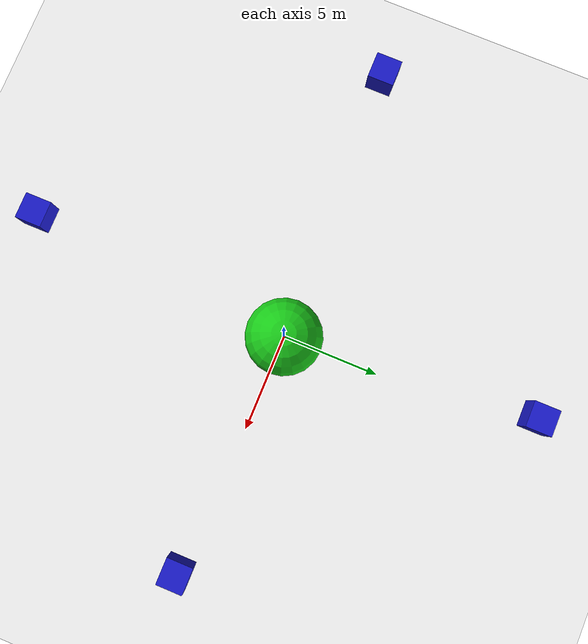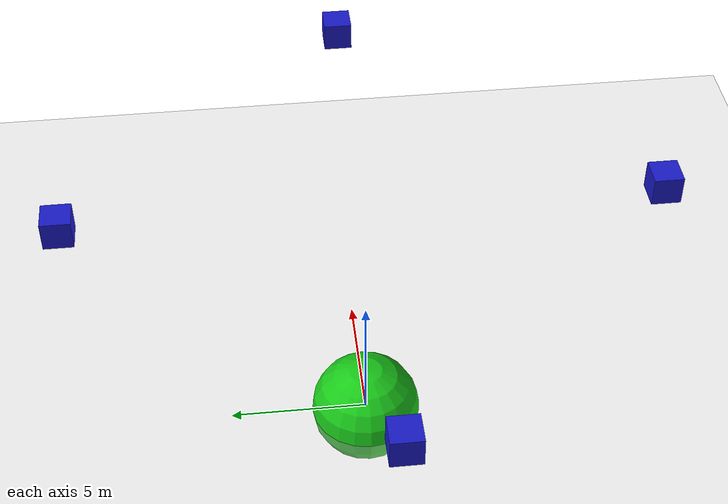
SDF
<sdf version="1.6">
 <world name="default">
  <plugin name="defense_coordinator" filename="libDefenseCoordinatorPlugin.so"/>
  <include><uri>model://ground_plane</uri></include>
  <include><uri>model://sun</uri></include>
  <model name="site">
   <static>true</static>
   <link name="body">
    <visual name="vis">
     <geometry><sphere><radius>2</radius></sphere></geometry>
     <material><ambient>0.1 0.8 0.1 1</ambient></material>
    </visual>
   </link>
  </model>
  <model name="interceptor_xplus">
   <pose>10 0 10 0 0 0</pose>
   <static>false</static>
   <link name="body">
    <inertial><mass>5</mass></inertial>
    <collision name="col"><geometry><box><size>1 1 1</size></box></geometry></collision>
    <visual name="vis">
     <geometry><box><size>1 1 1</size></box></geometry>
     <material><ambient>0.1 0.1 0.8 1</ambient></material>
    </visual>
   </link>
  </model>
  <model name="interceptor_xminus">
   <pose>-10 0 10 0 0 0</pose>
   <static>false</static>
   <link name="body">
    <inertial><mass>5</mass></inertial>
    <collision name="col"><geometry><box><size>1 1 1</size></box></geometry></collision>
    <visual name="vis">
     <geometry><box><size>1 1 1</size></box></geometry>
     <material><ambient>0.1 0.1 0.8 1</ambient></material>
    </visual>
   </link>
  </model>
  <model name="interceptor_yplus">
   <pose>0 10 10 0 0 0</pose>
   <static>false</static>
   <link name="body">
    <inertial><mass>5</mass></inertial>
    <collision name="col"><geometry><box><size>1 1 1</size></box></geometry></collision>
    <visual name="vis">
     <geometry><box><size>1 1 1</size></box></geometry>
     <material><ambient>0.1 0.1 0.8 1</ambient></material>
    </visual>
   </link>
  </model>
  <model name="interceptor_yminus">
   <pose>0 -10 10 0 0 0</pose>
   <static>false</static>
   <link name="body">
    <inertial><mass>5</mass></inertial>
    <collision name="col"><geometry><box><size>1 1 1</size></box></geometry></collision>
    <visual name="vis">
     <geometry><box><size>1 1 1</size></box></geometry>
     <material><ambient>0.1 0.1 0.8 1</ambient></material>
    </visual>
   </link>
  </model>
 </world>
</sdf>
